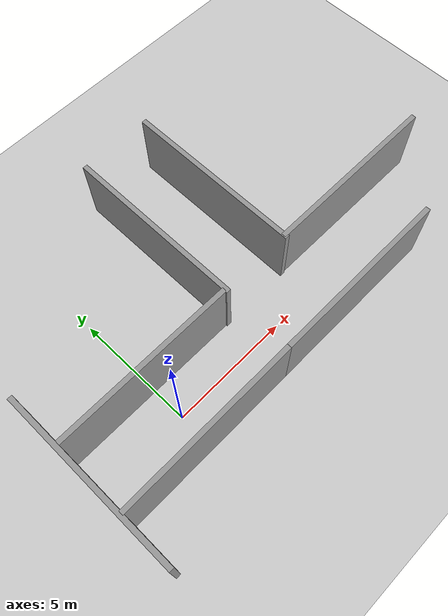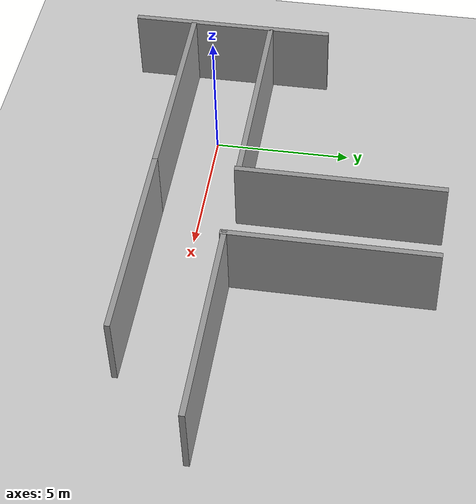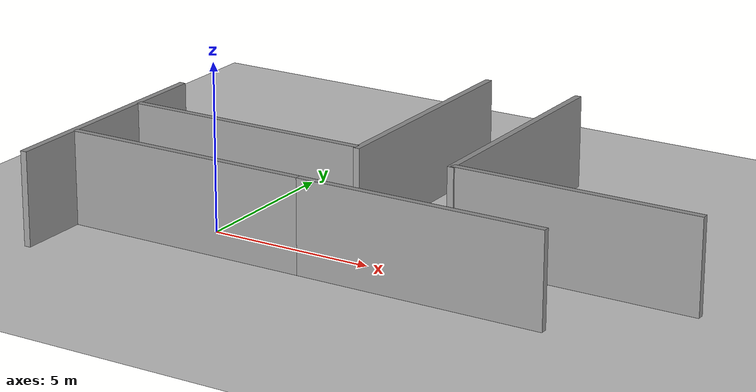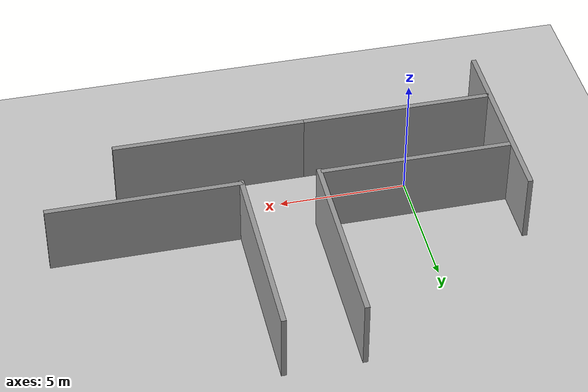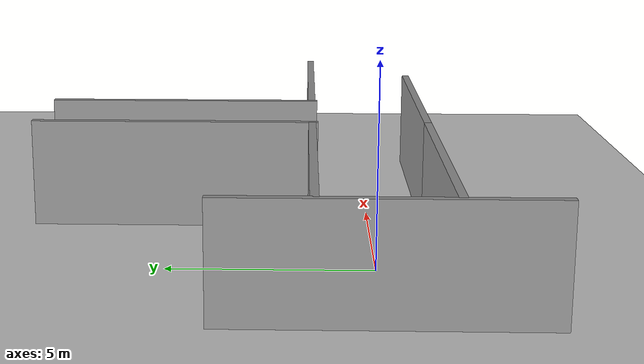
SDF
<sdf version="1.5">
 <world name="default">
  <include><uri>model://sun</uri></include>
  <include><uri>model://ground_plane</uri></include>
  <include><uri>model://asphalt_plane</uri></include>
  <include><name>grey_wall</name><uri>model://grey_wall</uri><pose>0 1.5 0 0 0 0</pose></include>
  <include><name>grey_wall2</name><uri>model://grey_wall</uri><pose>0 -1.5 0 0 0 0</pose></include>
  <include><name>grey_wall3</name><uri>model://grey_wall</uri><pose>7.5 -1.5 0 0 0 0</pose></include>
  <include><name>grey_wall4</name><uri>model://grey_wall</uri><pose>-3.8 0 0 0 0 1.5708</pose></include>
  <include><name>grey_wall4</name><uri>model://grey_wall</uri><pose>3.8 5.1 0 0 0 1.5708</pose></include>
  <include><name>grey_wall4</name><uri>model://grey_wall</uri><pose>6.8 5.1 0 0 0 1.5708</pose></include>
  <include><name>grey_wall4</name><uri>model://grey_wall</uri><pose>10.5 1.5 0 0 0 0</pose></include>
  <physics name="default_physics" default="0" type="ode">
   <gravity>0 0 -9.8066</gravity>
   <ode>
    <solver>
     <type>quick</type>
     <iters>10</iters>
     <sor>1.3</sor>
     <use_dynamic_moi_rescaling>0</use_dynamic_moi_rescaling>
    </solver>
    <constraints>
     <cfm>0</cfm>
     <erp>0.2</erp>
     <contact_max_correcting_vel>100</contact_max_correcting_vel>
     <contact_surface_layer>0.001</contact_surface_layer>
    </constraints>
   </ode>
   <max_step_size>0.002</max_step_size>
   <real_time_factor>1</real_time_factor>
   <real_time_update_rate>500</real_time_update_rate>
   <magnetic_field>6e-06 2.3e-05 -4.2e-05</magnetic_field>
  </physics>
 </world>
</sdf>

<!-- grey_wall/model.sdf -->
<sdf version="1.5">
  <model name="grey_wall">
    <static>true</static>
    <link name="link">
      <pose>0 0 1.4 0 0 0</pose>
      <collision name="collision">
        <geometry>
          <box>
            <size>7.5 0.2 2.8</size>
          </box>
        </geometry>
      </collision>
      <visual name="visual">
        <cast_shadows>false</cast_shadows>
        <geometry>
          <box>
            <size>7.5 0.2 2.8</size>
          </box>
        </geometry>
        <material>
          <script>
            <uri>model://../model_source/models/grey_wall/materials/scripts</uri>
            <uri>model://../model_source/models/grey_wall/materials/textures</uri>
            <name>vrc/grey_wall</name>
          </script>
        </material>
      </visual>
    </link>
  </model>
</sdf>
